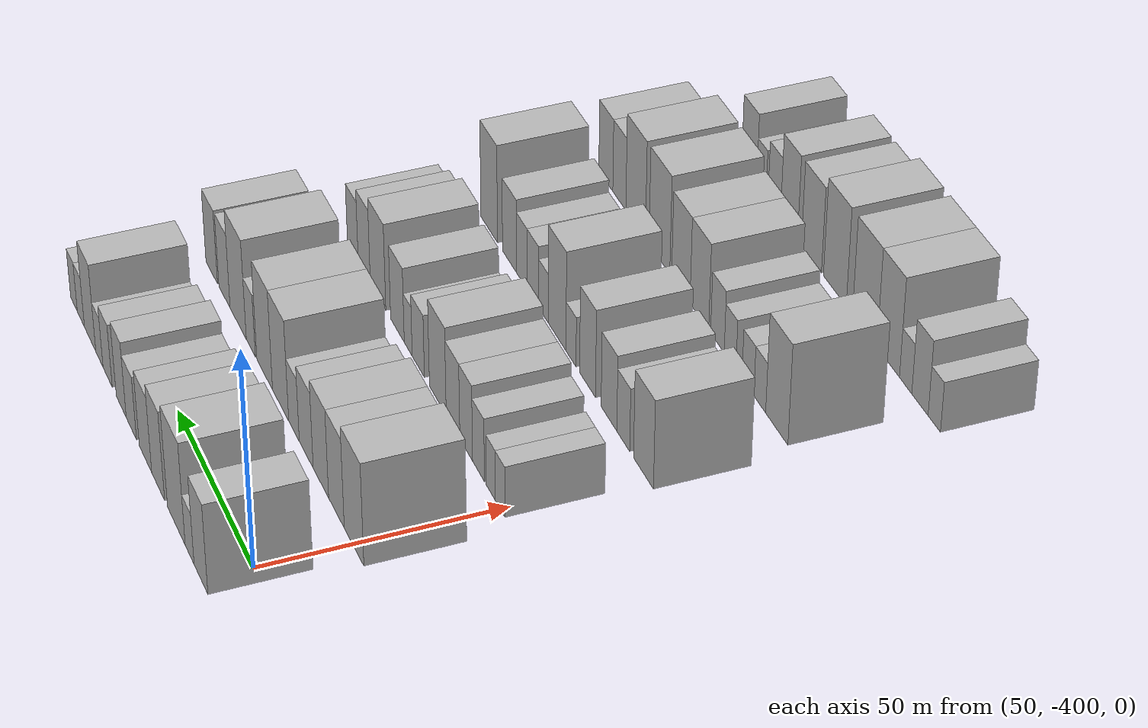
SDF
<sdf version="1.6">
 <world name="default">
  <model name="building_12">
   <static>1</static>
   <pose>50.0000 -399.7153 0 0.000000 0.000000 0.000000</pose>
   <link name="link">
    <pose>0 0 10.50 0 0 0</pose>
    <collision name="collision"><geometry><box><size>20.0000 8.9202 21.0000</size></box></geometry></collision>
    <visual name="visual">
     <cast_shadows>0</cast_shadows>
     <geometry><box><size>20.0000 8.9202 21.0000</size></box></geometry>
     <material>
      <script>
       <uri>model://HANNAS_wall/materials/scripts</uri>
       <uri>model://HANNAS_wall/materials/textures</uri>
       <name>vrc/HANNAS_wall</name>
      </script>
     </material>
    </visual>
   </link>
  </model>
  <model name="building_13">
   <static>1</static>
   <pose>50.0000 -392.3392 0 0.000000 0.000000 0.000000</pose>
   <link name="link">
    <pose>0 0 6.00 0 0 0</pose>
    <collision name="collision"><geometry><box><size>20.0000 5.8320 12.0000</size></box></geometry></collision>
    <visual name="visual">
     <cast_shadows>0</cast_shadows>
     <geometry><box><size>20.0000 5.8320 12.0000</size></box></geometry>
     <material>
      <script>
       <uri>model://HANNAS_wall/materials/scripts</uri>
       <uri>model://HANNAS_wall/materials/textures</uri>
       <name>vrc/HANNAS_wall</name>
      </script>
     </material>
    </visual>
   </link>
  </model>
  <model name="building_14">
   <static>1</static>
   <pose>50.0000 -383.4952 0 0.000000 0.000000 0.000000</pose>
   <link name="link">
    <pose>0 0 12.00 0 0 0</pose>
    <collision name="collision"><geometry><box><size>20.0000 11.8561 24.0000</size></box></geometry></collision>
    <visual name="visual">
     <cast_shadows>0</cast_shadows>
     <geometry><box><size>20.0000 11.8561 24.0000</size></box></geometry>
     <material>
      <script>
       <uri>model://HANNAS_wall/materials/scripts</uri>
       <uri>model://HANNAS_wall/materials/textures</uri>
       <name>vrc/HANNAS_wall</name>
      </script>
     </material>
    </visual>
   </link>
  </model>
  <model name="building_15">
   <static>1</static>
   <pose>50.0000 -371.1223 0 0.000000 0.000000 0.000000</pose>
   <link name="link">
    <pose>0 0 10.50 0 0 0</pose>
    <collision name="collision"><geometry><box><size>20.0000 8.8896 21.0000</size></box></geometry></collision>
    <visual name="visual">
     <cast_shadows>0</cast_shadows>
     <geometry><box><size>20.0000 8.8896 21.0000</size></box></geometry>
     <material>
      <script>
       <uri>model://HANNAS_wall/materials/scripts</uri>
       <uri>model://HANNAS_wall/materials/textures</uri>
       <name>vrc/HANNAS_wall</name>
      </script>
     </material>
    </visual>
   </link>
  </model>
  <model name="building_16">
   <static>1</static>
   <pose>50.0000 -362.3112 0 0.000000 0.000000 0.000000</pose>
   <link name="link">
    <pose>0 0 9.00 0 0 0</pose>
    <collision name="collision"><geometry><box><size>20.0000 8.7326 18.0000</size></box></geometry></collision>
    <visual name="visual">
     <cast_shadows>0</cast_shadows>
     <geometry><box><size>20.0000 8.7326 18.0000</size></box></geometry>
     <material>
      <script>
       <uri>model://HANNAS_wall/materials/scripts</uri>
       <uri>model://HANNAS_wall/materials/textures</uri>
       <name>vrc/HANNAS_wall</name>
      </script>
     </material>
    </visual>
   </link>
  </model>
  <model name="building_17">
   <static>1</static>
   <pose>50.0000 -352.2505 0 0.000000 0.000000 0.000000</pose>
   <link name="link">
    <pose>0 0 7.50 0 0 0</pose>
    <collision name="collision"><geometry><box><size>20.0000 7.3887 15.0000</size></box></geometry></collision>
    <visual name="visual">
     <cast_shadows>0</cast_shadows>
     <geometry><box><size>20.0000 7.3887 15.0000</size></box></geometry>
     <material>
      <script>
       <uri>model://HANNAS_wall/materials/scripts</uri>
       <uri>model://HANNAS_wall/materials/textures</uri>
       <name>vrc/HANNAS_wall</name>
      </script>
     </material>
    </visual>
   </link>
  </model>
  <model name="building_18">
   <static>1</static>
   <pose>50.0000 -344.9468 0 0.000000 0.000000 0.000000</pose>
   <link name="link">
    <pose>0 0 9.00 0 0 0</pose>
    <collision name="collision"><geometry><box><size>20.0000 7.2187 18.0000</size></box></geometry></collision>
    <visual name="visual">
     <cast_shadows>0</cast_shadows>
     <geometry><box><size>20.0000 7.2187 18.0000</size></box></geometry>
     <material>
      <script>
       <uri>model://HANNAS_wall/materials/scripts</uri>
       <uri>model://HANNAS_wall/materials/textures</uri>
       <name>vrc/HANNAS_wall</name>
      </script>
     </material>
    </visual>
   </link>
  </model>
  <model name="building_19">
   <static>1</static>
   <pose>50.0000 -334.9244 0 0.000000 0.000000 0.000000</pose>
   <link name="link">
    <pose>0 0 7.50 0 0 0</pose>
    <collision name="collision"><geometry><box><size>20.0000 6.8262 15.0000</size></box></geometry></collision>
    <visual name="visual">
     <cast_shadows>0</cast_shadows>
     <geometry><box><size>20.0000 6.8262 15.0000</size></box></geometry>
     <material>
      <script>
       <uri>model://HANNAS_wall/materials/scripts</uri>
       <uri>model://HANNAS_wall/materials/textures</uri>
       <name>vrc/HANNAS_wall</name>
      </script>
     </material>
    </visual>
   </link>
  </model>
  <model name="building_20">
   <static>1</static>
   <pose>50.0000 -328.7829 0 0.000000 0.000000 0.000000</pose>
   <link name="link">
    <pose>0 0 6.00 0 0 0</pose>
    <collision name="collision"><geometry><box><size>20.0000 5.4569 12.0000</size></box></geometry></collision>
    <visual name="visual">
     <cast_shadows>0</cast_shadows>
     <geometry><box><size>20.0000 5.4569 12.0000</size></box></geometry>
     <material>
      <script>
       <uri>model://HANNAS_wall/materials/scripts</uri>
       <uri>model://HANNAS_wall/materials/textures</uri>
       <name>vrc/HANNAS_wall</name>
      </script>
     </material>
    </visual>
   </link>
  </model>
  <model name="building_21">
   <static>1</static>
   <pose>50.0000 -321.6892 0 0.000000 0.000000 0.000000</pose>
   <link name="link">
    <pose>0 0 10.50 0 0 0</pose>
    <collision name="collision"><geometry><box><size>20.0000 8.7305 21.0000</size></box></geometry></collision>
    <visual name="visual">
     <cast_shadows>0</cast_shadows>
     <geometry><box><size>20.0000 8.7305 21.0000</size></box></geometry>
     <material>
      <script>
       <uri>model://HANNAS_wall/materials/scripts</uri>
       <uri>model://HANNAS_wall/materials/textures</uri>
       <name>vrc/HANNAS_wall</name>
      </script>
     </material>
    </visual>
   </link>
  </model>
  <model name="building_22">
   <static>1</static>
   <pose>50.0000 -314.5585 0 0.000000 0.000000 0.000000</pose>
   <link name="link">
    <pose>0 0 6.00 0 0 0</pose>
    <collision name="collision"><geometry><box><size>20.0000 5.5309 12.0000</size></box></geometry></collision>
    <visual name="visual">
     <cast_shadows>0</cast_shadows>
     <geometry><box><size>20.0000 5.5309 12.0000</size></box></geometry>
     <material>
      <script>
       <uri>model://HANNAS_wall/materials/scripts</uri>
       <uri>model://HANNAS_wall/materials/textures</uri>
       <name>vrc/HANNAS_wall</name>
      </script>
     </material>
    </visual>
   </link>
  </model>
  <model name="building_23">
   <static>1</static>
   <pose>50.0000 -309.1795 0 0.000000 0.000000 0.000000</pose>
   <link name="link">
    <pose>0 0 6.00 0 0 0</pose>
    <collision name="collision"><geometry><box><size>20.0000 5.2270 12.0000</size></box></geometry></collision>
    <visual name="visual">
     <cast_shadows>0</cast_shadows>
     <geometry><box><size>20.0000 5.2270 12.0000</size></box></geometry>
     <material>
      <script>
       <uri>model://HANNAS_wall/materials/scripts</uri>
       <uri>model://HANNAS_wall/materials/textures</uri>
       <name>vrc/HANNAS_wall</name>
      </script>
     </material>
    </visual>
   </link>
  </model>
  <model name="building_116">
   <static>1</static>
   <pose>79.0000 -400.7928 0 0.000000 0.000000 0.000000</pose>
   <link name="link">
    <pose>0 0 12.00 0 0 0</pose>
    <collision name="collision"><geometry><box><size>20.0000 11.5504 24.0000</size></box></geometry></collision>
    <visual name="visual">
     <cast_shadows>0</cast_shadows>
     <geometry><box><size>20.0000 11.5504 24.0000</size></box></geometry>
     <material>
      <script>
       <uri>model://HANNAS_wall/materials/scripts</uri>
       <uri>model://HANNAS_wall/materials/textures</uri>
       <name>vrc/HANNAS_wall</name>
      </script>
     </material>
    </visual>
   </link>
  </model>
  <model name="building_117">
   <static>1</static>
   <pose>79.0000 -390.3187 0 0.000000 0.000000 0.000000</pose>
   <link name="link">
    <pose>0 0 10.50 0 0 0</pose>
    <collision name="collision"><geometry><box><size>20.0000 9.3979 21.0000</size></box></geometry></collision>
    <visual name="visual">
     <cast_shadows>0</cast_shadows>
     <geometry><box><size>20.0000 9.3979 21.0000</size></box></geometry>
     <material>
      <script>
       <uri>model://HANNAS_wall/materials/scripts</uri>
       <uri>model://HANNAS_wall/materials/textures</uri>
       <name>vrc/HANNAS_wall</name>
      </script>
     </material>
    </visual>
   </link>
  </model>
  <model name="building_118">
   <static>1</static>
   <pose>79.0000 -380.8746 0 0.000000 0.000000 0.000000</pose>
   <link name="link">
    <pose>0 0 10.50 0 0 0</pose>
    <collision name="collision"><geometry><box><size>20.0000 9.4901 21.0000</size></box></geometry></collision>
    <visual name="visual">
     <cast_shadows>0</cast_shadows>
     <geometry><box><size>20.0000 9.4901 21.0000</size></box></geometry>
     <material>
      <script>
       <uri>model://HANNAS_wall/materials/scripts</uri>
       <uri>model://HANNAS_wall/materials/textures</uri>
       <name>vrc/HANNAS_wall</name>
      </script>
     </material>
    </visual>
   </link>
  </model>
  <model name="building_119">
   <static>1</static>
   <pose>79.0000 -371.7578 0 0.000000 0.000000 0.000000</pose>
   <link name="link">
    <pose>0 0 9.00 0 0 0</pose>
    <collision name="collision"><geometry><box><size>20.0000 8.7435 18.0000</size></box></geometry></collision>
    <visual name="visual">
     <cast_shadows>0</cast_shadows>
     <geometry><box><size>20.0000 8.7435 18.0000</size></box></geometry>
     <material>
      <script>
       <uri>model://HANNAS_wall/materials/scripts</uri>
       <uri>model://HANNAS_wall/materials/textures</uri>
       <name>vrc/HANNAS_wall</name>
      </script>
     </material>
    </visual>
   </link>
  </model>
  <model name="building_120">
   <static>1</static>
   <pose>79.0000 -364.0151 0 0.000000 0.000000 0.000000</pose>
   <link name="link">
    <pose>0 0 7.50 0 0 0</pose>
    <collision name="collision"><geometry><box><size>20.0000 6.7421 15.0000</size></box></geometry></collision>
    <visual name="visual">
     <cast_shadows>0</cast_shadows>
     <geometry><box><size>20.0000 6.7421 15.0000</size></box></geometry>
     <material>
      <script>
       <uri>model://HANNAS_wall/materials/scripts</uri>
       <uri>model://HANNAS_wall/materials/textures</uri>
       <name>vrc/HANNAS_wall</name>
      </script>
     </material>
    </visual>
   </link>
  </model>
  <model name="building_121">
   <static>1</static>
   <pose>79.0000 -355.3989 0 0.000000 0.000000 0.000000</pose>
   <link name="link">
    <pose>0 0 12.00 0 0 0</pose>
    <collision name="collision"><geometry><box><size>20.0000 10.4903 24.0000</size></box></geometry></collision>
    <visual name="visual">
     <cast_shadows>0</cast_shadows>
     <geometry><box><size>20.0000 10.4903 24.0000</size></box></geometry>
     <material>
      <script>
       <uri>model://HANNAS_wall/materials/scripts</uri>
       <uri>model://HANNAS_wall/materials/textures</uri>
       <name>vrc/HANNAS_wall</name>
      </script>
     </material>
    </visual>
   </link>
  </model>
  <model name="building_122">
   <static>1</static>
   <pose>79.0000 -344.9526 0 0.000000 0.000000 0.000000</pose>
   <link name="link">
    <pose>0 0 12.00 0 0 0</pose>
    <collision name="collision"><geometry><box><size>20.0000 10.4023 24.0000</size></box></geometry></collision>
    <visual name="visual">
     <cast_shadows>0</cast_shadows>
     <geometry><box><size>20.0000 10.4023 24.0000</size></box></geometry>
     <material>
      <script>
       <uri>model://HANNAS_wall/materials/scripts</uri>
       <uri>model://HANNAS_wall/materials/textures</uri>
       <name>vrc/HANNAS_wall</name>
      </script>
     </material>
    </visual>
   </link>
  </model>
  <model name="building_123">
   <static>1</static>
   <pose>79.0000 -335.6734 0 0.000000 0.000000 0.000000</pose>
   <link name="link">
    <pose>0 0 7.50 0 0 0</pose>
    <collision name="collision"><geometry><box><size>20.0000 6.1561 15.0000</size></box></geometry></collision>
    <visual name="visual">
     <cast_shadows>0</cast_shadows>
     <geometry><box><size>20.0000 6.1561 15.0000</size></box></geometry>
     <material>
      <script>
       <uri>model://HANNAS_wall/materials/scripts</uri>
       <uri>model://HANNAS_wall/materials/textures</uri>
       <name>vrc/HANNAS_wall</name>
      </script>
     </material>
    </visual>
   </link>
  </model>
  <model name="building_124">
   <static>1</static>
   <pose>79.0000 -327.0074 0 0.000000 0.000000 0.000000</pose>
   <link name="link">
    <pose>0 0 12.00 0 0 0</pose>
    <collision name="collision"><geometry><box><size>20.0000 11.1759 24.0000</size></box></geometry></collision>
    <visual name="visual">
     <cast_shadows>0</cast_shadows>
     <geometry><box><size>20.0000 11.1759 24.0000</size></box></geometry>
     <material>
      <script>
       <uri>model://HANNAS_wall/materials/scripts</uri>
       <uri>model://HANNAS_wall/materials/textures</uri>
       <name>vrc/HANNAS_wall</name>
      </script>
     </material>
    </visual>
   </link>
  </model>
  <model name="building_125">
   <static>1</static>
   <pose>79.0000 -317.5021 0 0.000000 0.000000 0.000000</pose>
   <link name="link">
    <pose>0 0 9.00 0 0 0</pose>
    <collision name="collision"><geometry><box><size>20.0000 7.8346 18.0000</size></box></geometry></collision>
    <visual name="visual">
     <cast_shadows>0</cast_shadows>
     <geometry><box><size>20.0000 7.8346 18.0000</size></box></geometry>
     <material>
      <script>
       <uri>model://HANNAS_wall/materials/scripts</uri>
       <uri>model://HANNAS_wall/materials/textures</uri>
       <name>vrc/HANNAS_wall</name>
      </script>
     </material>
    </visual>
   </link>
  </model>
  <model name="building_126">
   <static>1</static>
   <pose>79.0000 -308.4600 0 0.000000 0.000000 0.000000</pose>
   <link name="link">
    <pose>0 0 9.00 0 0 0</pose>
    <collision name="collision"><geometry><box><size>20.0000 8.2496 18.0000</size></box></geometry></collision>
    <visual name="visual">
     <cast_shadows>0</cast_shadows>
     <geometry><box><size>20.0000 8.2496 18.0000</size></box></geometry>
     <material>
      <script>
       <uri>model://HANNAS_wall/materials/scripts</uri>
       <uri>model://HANNAS_wall/materials/textures</uri>
       <name>vrc/HANNAS_wall</name>
      </script>
     </material>
    </visual>
   </link>
  </model>
  <model name="building_234">
   <static>1</static>
   <pose>108.0000 -399.9442 0 0.000000 0.000000 0.000000</pose>
   <link name="link">
    <pose>0 0 6.00 0 0 0</pose>
    <collision name="collision"><geometry><box><size>20.0000 5.2322 12.0000</size></box></geometry></collision>
    <visual name="visual">
     <cast_shadows>0</cast_shadows>
     <geometry><box><size>20.0000 5.2322 12.0000</size></box></geometry>
     <material>
      <script>
       <uri>model://HANNAS_wall/materials/scripts</uri>
       <uri>model://HANNAS_wall/materials/textures</uri>
       <name>vrc/HANNAS_wall</name>
      </script>
     </material>
    </visual>
   </link>
  </model>
  <model name="building_235">
   <static>1</static>
   <pose>108.0000 -394.8222 0 0.000000 0.000000 0.000000</pose>
   <link name="link">
    <pose>0 0 6.00 0 0 0</pose>
    <collision name="collision"><geometry><box><size>20.0000 5.0118 12.0000</size></box></geometry></collision>
    <visual name="visual">
     <cast_shadows>0</cast_shadows>
     <geometry><box><size>20.0000 5.0118 12.0000</size></box></geometry>
     <material>
      <script>
       <uri>model://HANNAS_wall/materials/scripts</uri>
       <uri>model://HANNAS_wall/materials/textures</uri>
       <name>vrc/HANNAS_wall</name>
      </script>
     </material>
    </visual>
   </link>
  </model>
  <model name="building_236">
   <static>1</static>
   <pose>108.0000 -388.0002 0 0.000000 0.000000 0.000000</pose>
   <link name="link">
    <pose>0 0 7.50 0 0 0</pose>
    <collision name="collision"><geometry><box><size>20.0000 6.6321 15.0000</size></box></geometry></collision>
    <visual name="visual">
     <cast_shadows>0</cast_shadows>
     <geometry><box><size>20.0000 6.6321 15.0000</size></box></geometry>
     <material>
      <script>
       <uri>model://HANNAS_wall/materials/scripts</uri>
       <uri>model://HANNAS_wall/materials/textures</uri>
       <name>vrc/HANNAS_wall</name>
      </script>
     </material>
    </visual>
   </link>
  </model>
  <model name="building_237">
   <static>1</static>
   <pose>108.0000 -381.0759 0 0.000000 0.000000 0.000000</pose>
   <link name="link">
    <pose>0 0 9.00 0 0 0</pose>
    <collision name="collision"><geometry><box><size>20.0000 7.2165 18.0000</size></box></geometry></collision>
    <visual name="visual">
     <cast_shadows>0</cast_shadows>
     <geometry><box><size>20.0000 7.2165 18.0000</size></box></geometry>
     <material>
      <script>
       <uri>model://HANNAS_wall/materials/scripts</uri>
       <uri>model://HANNAS_wall/materials/textures</uri>
       <name>vrc/HANNAS_wall</name>
      </script>
     </material>
    </visual>
   </link>
  </model>
  <model name="building_238">
   <static>1</static>
   <pose>108.0000 -373.5314 0 0.000000 0.000000 0.000000</pose>
   <link name="link">
    <pose>0 0 9.00 0 0 0</pose>
    <collision name="collision"><geometry><box><size>20.0000 7.8724 18.0000</size></box></geometry></collision>
    <visual name="visual">
     <cast_shadows>0</cast_shadows>
     <geometry><box><size>20.0000 7.8724 18.0000</size></box></geometry>
     <material>
      <script>
       <uri>model://HANNAS_wall/materials/scripts</uri>
       <uri>model://HANNAS_wall/materials/textures</uri>
       <name>vrc/HANNAS_wall</name>
      </script>
     </material>
    </visual>
   </link>
  </model>
  <model name="building_239">
   <static>1</static>
   <pose>108.0000 -364.6773 0 0.000000 0.000000 0.000000</pose>
   <link name="link">
    <pose>0 0 10.50 0 0 0</pose>
    <collision name="collision"><geometry><box><size>20.0000 9.8359 21.0000</size></box></geometry></collision>
    <visual name="visual">
     <cast_shadows>0</cast_shadows>
     <geometry><box><size>20.0000 9.8359 21.0000</size></box></geometry>
     <material>
      <script>
       <uri>model://HANNAS_wall/materials/scripts</uri>
       <uri>model://HANNAS_wall/materials/textures</uri>
       <name>vrc/HANNAS_wall</name>
      </script>
     </material>
    </visual>
   </link>
  </model>
  <model name="building_240">
   <static>1</static>
   <pose>108.0000 -353.0786 0 0.000000 0.000000 0.000000</pose>
   <link name="link">
    <pose>0 0 7.50 0 0 0</pose>
    <collision name="collision"><geometry><box><size>20.0000 7.3615 15.0000</size></box></geometry></collision>
    <visual name="visual">
     <cast_shadows>0</cast_shadows>
     <geometry><box><size>20.0000 7.3615 15.0000</size></box></geometry>
     <material>
      <script>
       <uri>model://HANNAS_wall/materials/scripts</uri>
       <uri>model://HANNAS_wall/materials/textures</uri>
       <name>vrc/HANNAS_wall</name>
      </script>
     </material>
    </visual>
   </link>
  </model>
  <model name="building_241">
   <static>1</static>
   <pose>108.0000 -346.9817 0 0.000000 0.000000 0.000000</pose>
   <link name="link">
    <pose>0 0 6.00 0 0 0</pose>
    <collision name="collision"><geometry><box><size>20.0000 4.8322 12.0000</size></box></geometry></collision>
    <visual name="visual">
     <cast_shadows>0</cast_shadows>
     <geometry><box><size>20.0000 4.8322 12.0000</size></box></geometry>
     <material>
      <script>
       <uri>model://HANNAS_wall/materials/scripts</uri>
       <uri>model://HANNAS_wall/materials/textures</uri>
       <name>vrc/HANNAS_wall</name>
      </script>
     </material>
    </visual>
   </link>
  </model>
  <model name="building_242">
   <static>1</static>
   <pose>108.0000 -340.3523 0 0.000000 0.000000 0.000000</pose>
   <link name="link">
    <pose>0 0 9.00 0 0 0</pose>
    <collision name="collision"><geometry><box><size>20.0000 8.4266 18.0000</size></box></geometry></collision>
    <visual name="visual">
     <cast_shadows>0</cast_shadows>
     <geometry><box><size>20.0000 8.4266 18.0000</size></box></geometry>
     <material>
      <script>
       <uri>model://HANNAS_wall/materials/scripts</uri>
       <uri>model://HANNAS_wall/materials/textures</uri>
       <name>vrc/HANNAS_wall</name>
      </script>
     </material>
    </visual>
   </link>
  </model>
  <model name="building_243">
   <static>1</static>
   <pose>108.0000 -328.2255 0 0.000000 0.000000 0.000000</pose>
   <link name="link">
    <pose>0 0 10.50 0 0 0</pose>
    <collision name="collision"><geometry><box><size>20.0000 9.8271 21.0000</size></box></geometry></collision>
    <visual name="visual">
     <cast_shadows>0</cast_shadows>
     <geometry><box><size>20.0000 9.8271 21.0000</size></box></geometry>
     <material>
      <script>
       <uri>model://HANNAS_wall/materials/scripts</uri>
       <uri>model://HANNAS_wall/materials/textures</uri>
       <name>vrc/HANNAS_wall</name>
      </script>
     </material>
    </visual>
   </link>
  </model>
  <model name="building_244">
   <static>1</static>
   <pose>108.0000 -319.4230 0 0.000000 0.000000 0.000000</pose>
   <link name="link">
    <pose>0 0 9.00 0 0 0</pose>
    <collision name="collision"><geometry><box><size>20.0000 7.7781 18.0000</size></box></geometry></collision>
    <visual name="visual">
     <cast_shadows>0</cast_shadows>
     <geometry><box><size>20.0000 7.7781 18.0000</size></box></geometry>
     <material>
      <script>
       <uri>model://HANNAS_wall/materials/scripts</uri>
       <uri>model://HANNAS_wall/materials/textures</uri>
       <name>vrc/HANNAS_wall</name>
      </script>
     </material>
    </visual>
   </link>
  </model>
  <model name="building_245">
   <static>1</static>
   <pose>108.0000 -312.0372 0 0.000000 0.000000 0.000000</pose>
   <link name="link">
    <pose>0 0 7.50 0 0 0</pose>
    <collision name="collision"><geometry><box><size>20.0000 6.9934 15.0000</size></box></geometry></collision>
    <visual name="visual">
     <cast_shadows>0</cast_shadows>
     <geometry><box><size>20.0000 6.9934 15.0000</size></box></geometry>
     <material>
      <script>
       <uri>model://HANNAS_wall/materials/scripts</uri>
       <uri>model://HANNAS_wall/materials/textures</uri>
       <name>vrc/HANNAS_wall</name>
      </script>
     </material>
    </visual>
   </link>
  </model>
  <model name="building_356">
   <static>1</static>
   <pose>137.0000 -399.5052 0 0.000000 0.000000 0.000000</pose>
   <link name="link">
    <pose>0 0 10.50 0 0 0</pose>
    <collision name="collision"><geometry><box><size>20.0000 10.1064 21.0000</size></box></geometry></collision>
    <visual name="visual">
     <cast_shadows>0</cast_shadows>
     <geometry><box><size>20.0000 10.1064 21.0000</size></box></geometry>
     <material>
      <script>
       <uri>model://HANNAS_wall/materials/scripts</uri>
       <uri>model://HANNAS_wall/materials/textures</uri>
       <name>vrc/HANNAS_wall</name>
      </script>
     </material>
    </visual>
   </link>
  </model>
  <model name="building_357">
   <static>1</static>
   <pose>137.0000 -389.1155 0 0.000000 0.000000 0.000000</pose>
   <link name="link">
    <pose>0 0 7.50 0 0 0</pose>
    <collision name="collision"><geometry><box><size>20.0000 6.6729 15.0000</size></box></geometry></collision>
    <visual name="visual">
     <cast_shadows>0</cast_shadows>
     <geometry><box><size>20.0000 6.6729 15.0000</size></box></geometry>
     <material>
      <script>
       <uri>model://HANNAS_wall/materials/scripts</uri>
       <uri>model://HANNAS_wall/materials/textures</uri>
       <name>vrc/HANNAS_wall</name>
      </script>
     </material>
    </visual>
   </link>
  </model>
  <model name="building_358">
   <static>1</static>
   <pose>137.0000 -381.6542 0 0.000000 0.000000 0.000000</pose>
   <link name="link">
    <pose>0 0 9.00 0 0 0</pose>
    <collision name="collision"><geometry><box><size>20.0000 8.2495 18.0000</size></box></geometry></collision>
    <visual name="visual">
     <cast_shadows>0</cast_shadows>
     <geometry><box><size>20.0000 8.2495 18.0000</size></box></geometry>
     <material>
      <script>
       <uri>model://HANNAS_wall/materials/scripts</uri>
       <uri>model://HANNAS_wall/materials/textures</uri>
       <name>vrc/HANNAS_wall</name>
      </script>
     </material>
    </visual>
   </link>
  </model>
  <model name="building_359">
   <static>1</static>
   <pose>137.0000 -370.2558 0 0.000000 0.000000 0.000000</pose>
   <link name="link">
    <pose>0 0 10.50 0 0 0</pose>
    <collision name="collision"><geometry><box><size>20.0000 8.5473 21.0000</size></box></geometry></collision>
    <visual name="visual">
     <cast_shadows>0</cast_shadows>
     <geometry><box><size>20.0000 8.5473 21.0000</size></box></geometry>
     <material>
      <script>
       <uri>model://HANNAS_wall/materials/scripts</uri>
       <uri>model://HANNAS_wall/materials/textures</uri>
       <name>vrc/HANNAS_wall</name>
      </script>
     </material>
    </visual>
   </link>
  </model>
  <model name="building_360">
   <static>1</static>
   <pose>137.0000 -361.2327 0 0.000000 0.000000 0.000000</pose>
   <link name="link">
    <pose>0 0 6.00 0 0 0</pose>
    <collision name="collision"><geometry><box><size>20.0000 5.4989 12.0000</size></box></geometry></collision>
    <visual name="visual">
     <cast_shadows>0</cast_shadows>
     <geometry><box><size>20.0000 5.4989 12.0000</size></box></geometry>
     <material>
      <script>
       <uri>model://HANNAS_wall/materials/scripts</uri>
       <uri>model://HANNAS_wall/materials/textures</uri>
       <name>vrc/HANNAS_wall</name>
      </script>
     </material>
    </visual>
   </link>
  </model>
  <model name="building_361">
   <static>1</static>
   <pose>137.0000 -353.5483 0 0.000000 0.000000 0.000000</pose>
   <link name="link">
    <pose>0 0 12.00 0 0 0</pose>
    <collision name="collision"><geometry><box><size>20.0000 9.8699 24.0000</size></box></geometry></collision>
    <visual name="visual">
     <cast_shadows>0</cast_shadows>
     <geometry><box><size>20.0000 9.8699 24.0000</size></box></geometry>
     <material>
      <script>
       <uri>model://HANNAS_wall/materials/scripts</uri>
       <uri>model://HANNAS_wall/materials/textures</uri>
       <name>vrc/HANNAS_wall</name>
      </script>
     </material>
    </visual>
   </link>
  </model>
  <model name="building_362">
   <static>1</static>
   <pose>137.0000 -345.8453 0 0.000000 0.000000 0.000000</pose>
   <link name="link">
    <pose>0 0 6.00 0 0 0</pose>
    <collision name="collision"><geometry><box><size>20.0000 5.5359 12.0000</size></box></geometry></collision>
    <visual name="visual">
     <cast_shadows>0</cast_shadows>
     <geometry><box><size>20.0000 5.5359 12.0000</size></box></geometry>
     <material>
      <script>
       <uri>model://HANNAS_wall/materials/scripts</uri>
       <uri>model://HANNAS_wall/materials/textures</uri>
       <name>vrc/HANNAS_wall</name>
      </script>
     </material>
    </visual>
   </link>
  </model>
  <model name="building_363">
   <static>1</static>
   <pose>137.0000 -339.7458 0 0.000000 0.000000 0.000000</pose>
   <link name="link">
    <pose>0 0 7.50 0 0 0</pose>
    <collision name="collision"><geometry><box><size>20.0000 6.6632 15.0000</size></box></geometry></collision>
    <visual name="visual">
     <cast_shadows>0</cast_shadows>
     <geometry><box><size>20.0000 6.6632 15.0000</size></box></geometry>
     <material>
      <script>
       <uri>model://HANNAS_wall/materials/scripts</uri>
       <uri>model://HANNAS_wall/materials/textures</uri>
       <name>vrc/HANNAS_wall</name>
      </script>
     </material>
    </visual>
   </link>
  </model>
  <model name="building_364">
   <static>1</static>
   <pose>137.0000 -333.3395 0 0.000000 0.000000 0.000000</pose>
   <link name="link">
    <pose>0 0 7.50 0 0 0</pose>
    <collision name="collision"><geometry><box><size>20.0000 6.1494 15.0000</size></box></geometry></collision>
    <visual name="visual">
     <cast_shadows>0</cast_shadows>
     <geometry><box><size>20.0000 6.1494 15.0000</size></box></geometry>
     <material>
      <script>
       <uri>model://HANNAS_wall/materials/scripts</uri>
       <uri>model://HANNAS_wall/materials/textures</uri>
       <name>vrc/HANNAS_wall</name>
      </script>
     </material>
    </visual>
   </link>
  </model>
  <model name="building_365">
   <static>1</static>
   <pose>137.0000 -326.1203 0 0.000000 0.000000 0.000000</pose>
   <link name="link">
    <pose>0 0 9.00 0 0 0</pose>
    <collision name="collision"><geometry><box><size>20.0000 8.2890 18.0000</size></box></geometry></collision>
    <visual name="visual">
     <cast_shadows>0</cast_shadows>
     <geometry><box><size>20.0000 8.2890 18.0000</size></box></geometry>
     <material>
      <script>
       <uri>model://HANNAS_wall/materials/scripts</uri>
       <uri>model://HANNAS_wall/materials/textures</uri>
       <name>vrc/HANNAS_wall</name>
      </script>
     </material>
    </visual>
   </link>
  </model>
  <model name="building_366">
   <static>1</static>
   <pose>137.0000 -313.9480 0 0.000000 0.000000 0.000000</pose>
   <link name="link">
    <pose>0 0 12.00 0 0 0</pose>
    <collision name="collision"><geometry><box><size>20.0000 10.0556 24.0000</size></box></geometry></collision>
    <visual name="visual">
     <cast_shadows>0</cast_shadows>
     <geometry><box><size>20.0000 10.0556 24.0000</size></box></geometry>
     <material>
      <script>
       <uri>model://HANNAS_wall/materials/scripts</uri>
       <uri>model://HANNAS_wall/materials/textures</uri>
       <name>vrc/HANNAS_wall</name>
      </script>
     </material>
    </visual>
   </link>
  </model>
  <model name="building_474">
   <static>1</static>
   <pose>166.0000 -395.9549 0 0.000000 0.000000 0.000000</pose>
   <link name="link">
    <pose>0 0 12.00 0 0 0</pose>
    <collision name="collision"><geometry><box><size>20.0000 10.6908 24.0000</size></box></geometry></collision>
    <visual name="visual">
     <cast_shadows>0</cast_shadows>
     <geometry><box><size>20.0000 10.6908 24.0000</size></box></geometry>
     <material>
      <script>
       <uri>model://HANNAS_wall/materials/scripts</uri>
       <uri>model://HANNAS_wall/materials/textures</uri>
       <name>vrc/HANNAS_wall</name>
      </script>
     </material>
    </visual>
   </link>
  </model>
  <model name="building_475">
   <static>1</static>
   <pose>166.0000 -387.7183 0 0.000000 0.000000 0.000000</pose>
   <link name="link">
    <pose>0 0 6.00 0 0 0</pose>
    <collision name="collision"><geometry><box><size>20.0000 5.7824 12.0000</size></box></geometry></collision>
    <visual name="visual">
     <cast_shadows>0</cast_shadows>
     <geometry><box><size>20.0000 5.7824 12.0000</size></box></geometry>
     <material>
      <script>
       <uri>model://HANNAS_wall/materials/scripts</uri>
       <uri>model://HANNAS_wall/materials/textures</uri>
       <name>vrc/HANNAS_wall</name>
      </script>
     </material>
    </visual>
   </link>
  </model>
  <model name="building_476">
   <static>1</static>
   <pose>166.0000 -381.8885 0 0.000000 0.000000 0.000000</pose>
   <link name="link">
    <pose>0 0 6.00 0 0 0</pose>
    <collision name="collision"><geometry><box><size>20.0000 5.8773 12.0000</size></box></geometry></collision>
    <visual name="visual">
     <cast_shadows>0</cast_shadows>
     <geometry><box><size>20.0000 5.8773 12.0000</size></box></geometry>
     <material>
      <script>
       <uri>model://HANNAS_wall/materials/scripts</uri>
       <uri>model://HANNAS_wall/materials/textures</uri>
       <name>vrc/HANNAS_wall</name>
      </script>
     </material>
    </visual>
   </link>
  </model>
  <model name="building_477">
   <static>1</static>
   <pose>166.0000 -372.9915 0 0.000000 0.000000 0.000000</pose>
   <link name="link">
    <pose>0 0 6.00 0 0 0</pose>
    <collision name="collision"><geometry><box><size>20.0000 5.9167 12.0000</size></box></geometry></collision>
    <visual name="visual">
     <cast_shadows>0</cast_shadows>
     <geometry><box><size>20.0000 5.9167 12.0000</size></box></geometry>
     <material>
      <script>
       <uri>model://HANNAS_wall/materials/scripts</uri>
       <uri>model://HANNAS_wall/materials/textures</uri>
       <name>vrc/HANNAS_wall</name>
      </script>
     </material>
    </visual>
   </link>
  </model>
  <model name="building_478">
   <static>1</static>
   <pose>166.0000 -366.5634 0 0.000000 0.000000 0.000000</pose>
   <link name="link">
    <pose>0 0 7.50 0 0 0</pose>
    <collision name="collision"><geometry><box><size>20.0000 6.9395 15.0000</size></box></geometry></collision>
    <visual name="visual">
     <cast_shadows>0</cast_shadows>
     <geometry><box><size>20.0000 6.9395 15.0000</size></box></geometry>
     <material>
      <script>
       <uri>model://HANNAS_wall/materials/scripts</uri>
       <uri>model://HANNAS_wall/materials/textures</uri>
       <name>vrc/HANNAS_wall</name>
      </script>
     </material>
    </visual>
   </link>
  </model>
  <model name="building_479">
   <static>1</static>
   <pose>166.0000 -357.2257 0 0.000000 0.000000 0.000000</pose>
   <link name="link">
    <pose>0 0 10.50 0 0 0</pose>
    <collision name="collision"><geometry><box><size>20.0000 9.7360 21.0000</size></box></geometry></collision>
    <visual name="visual">
     <cast_shadows>0</cast_shadows>
     <geometry><box><size>20.0000 9.7360 21.0000</size></box></geometry>
     <material>
      <script>
       <uri>model://HANNAS_wall/materials/scripts</uri>
       <uri>model://HANNAS_wall/materials/textures</uri>
       <name>vrc/HANNAS_wall</name>
      </script>
     </material>
    </visual>
   </link>
  </model>
  <model name="building_480">
   <static>1</static>
   <pose>166.0000 -347.4761 0 0.000000 0.000000 0.000000</pose>
   <link name="link">
    <pose>0 0 10.50 0 0 0</pose>
    <collision name="collision"><geometry><box><size>20.0000 9.7630 21.0000</size></box></geometry></collision>
    <visual name="visual">
     <cast_shadows>0</cast_shadows>
     <geometry><box><size>20.0000 9.7630 21.0000</size></box></geometry>
     <material>
      <script>
       <uri>model://HANNAS_wall/materials/scripts</uri>
       <uri>model://HANNAS_wall/materials/textures</uri>
       <name>vrc/HANNAS_wall</name>
      </script>
     </material>
    </visual>
   </link>
  </model>
  <model name="building_481">
   <static>1</static>
   <pose>166.0000 -335.9434 0 0.000000 0.000000 0.000000</pose>
   <link name="link">
    <pose>0 0 12.00 0 0 0</pose>
    <collision name="collision"><geometry><box><size>20.0000 11.3025 24.0000</size></box></geometry></collision>
    <visual name="visual">
     <cast_shadows>0</cast_shadows>
     <geometry><box><size>20.0000 11.3025 24.0000</size></box></geometry>
     <material>
      <script>
       <uri>model://HANNAS_wall/materials/scripts</uri>
       <uri>model://HANNAS_wall/materials/textures</uri>
       <name>vrc/HANNAS_wall</name>
      </script>
     </material>
    </visual>
   </link>
  </model>
  <model name="building_482">
   <static>1</static>
   <pose>166.0000 -322.8501 0 0.000000 0.000000 0.000000</pose>
   <link name="link">
    <pose>0 0 12.00 0 0 0</pose>
    <collision name="collision"><geometry><box><size>20.0000 10.8841 24.0000</size></box></geometry></collision>
    <visual name="visual">
     <cast_shadows>0</cast_shadows>
     <geometry><box><size>20.0000 10.8841 24.0000</size></box></geometry>
     <material>
      <script>
       <uri>model://HANNAS_wall/materials/scripts</uri>
       <uri>model://HANNAS_wall/materials/textures</uri>
       <name>vrc/HANNAS_wall</name>
      </script>
     </material>
    </visual>
   </link>
  </model>
  <model name="building_483">
   <static>1</static>
   <pose>166.0000 -313.7095 0 0.000000 0.000000 0.000000</pose>
   <link name="link">
    <pose>0 0 9.00 0 0 0</pose>
    <collision name="collision"><geometry><box><size>20.0000 7.3969 18.0000</size></box></geometry></collision>
    <visual name="visual">
     <cast_shadows>0</cast_shadows>
     <geometry><box><size>20.0000 7.3969 18.0000</size></box></geometry>
     <material>
      <script>
       <uri>model://HANNAS_wall/materials/scripts</uri>
       <uri>model://HANNAS_wall/materials/textures</uri>
       <name>vrc/HANNAS_wall</name>
      </script>
     </material>
    </visual>
   </link>
  </model>
  <model name="building_484">
   <static>1</static>
   <pose>166.0000 -305.9865 0 0.000000 0.000000 0.000000</pose>
   <link name="link">
    <pose>0 0 9.00 0 0 0</pose>
    <collision name="collision"><geometry><box><size>20.0000 8.0492 18.0000</size></box></geometry></collision>
    <visual name="visual">
     <cast_shadows>0</cast_shadows>
     <geometry><box><size>20.0000 8.0492 18.0000</size></box></geometry>
     <material>
      <script>
       <uri>model://HANNAS_wall/materials/scripts</uri>
       <uri>model://HANNAS_wall/materials/textures</uri>
       <name>vrc/HANNAS_wall</name>
      </script>
     </material>
    </visual>
   </link>
  </model>
  <model name="building_589">
   <static>1</static>
   <pose>195.0000 -405.1829 0 0.000000 0.000000 0.000000</pose>
   <link name="link">
    <pose>0 0 6.00 0 0 0</pose>
    <collision name="collision"><geometry><box><size>20.0000 5.5160 12.0000</size></box></geometry></collision>
    <visual name="visual">
     <cast_shadows>0</cast_shadows>
     <geometry><box><size>20.0000 5.5160 12.0000</size></box></geometry>
     <material>
      <script>
       <uri>model://HANNAS_wall/materials/scripts</uri>
       <uri>model://HANNAS_wall/materials/textures</uri>
       <name>vrc/HANNAS_wall</name>
      </script>
     </material>
    </visual>
   </link>
  </model>
  <model name="building_590">
   <static>1</static>
   <pose>195.0000 -398.7496 0 0.000000 0.000000 0.000000</pose>
   <link name="link">
    <pose>0 0 9.00 0 0 0</pose>
    <collision name="collision"><geometry><box><size>20.0000 7.3507 18.0000</size></box></geometry></collision>
    <visual name="visual">
     <cast_shadows>0</cast_shadows>
     <geometry><box><size>20.0000 7.3507 18.0000</size></box></geometry>
     <material>
      <script>
       <uri>model://HANNAS_wall/materials/scripts</uri>
       <uri>model://HANNAS_wall/materials/textures</uri>
       <name>vrc/HANNAS_wall</name>
      </script>
     </material>
    </visual>
   </link>
  </model>
  <model name="building_591">
   <static>1</static>
   <pose>195.0000 -392.2516 0 0.000000 0.000000 0.000000</pose>
   <link name="link">
    <pose>0 0 6.00 0 0 0</pose>
    <collision name="collision"><geometry><box><size>20.0000 5.6452 12.0000</size></box></geometry></collision>
    <visual name="visual">
     <cast_shadows>0</cast_shadows>
     <geometry><box><size>20.0000 5.6452 12.0000</size></box></geometry>
     <material>
      <script>
       <uri>model://HANNAS_wall/materials/scripts</uri>
       <uri>model://HANNAS_wall/materials/textures</uri>
       <name>vrc/HANNAS_wall</name>
      </script>
     </material>
    </visual>
   </link>
  </model>
  <model name="building_592">
   <static>1</static>
   <pose>195.0000 -384.1801 0 0.000000 0.000000 0.000000</pose>
   <link name="link">
    <pose>0 0 12.00 0 0 0</pose>
    <collision name="collision"><geometry><box><size>20.0000 10.4979 24.0000</size></box></geometry></collision>
    <visual name="visual">
     <cast_shadows>0</cast_shadows>
     <geometry><box><size>20.0000 10.4979 24.0000</size></box></geometry>
     <material>
      <script>
       <uri>model://HANNAS_wall/materials/scripts</uri>
       <uri>model://HANNAS_wall/materials/textures</uri>
       <name>vrc/HANNAS_wall</name>
      </script>
     </material>
    </visual>
   </link>
  </model>
  <model name="building_593">
   <static>1</static>
   <pose>195.0000 -373.1068 0 0.000000 0.000000 0.000000</pose>
   <link name="link">
    <pose>0 0 12.00 0 0 0</pose>
    <collision name="collision"><geometry><box><size>20.0000 11.6487 24.0000</size></box></geometry></collision>
    <visual name="visual">
     <cast_shadows>0</cast_shadows>
     <geometry><box><size>20.0000 11.6487 24.0000</size></box></geometry>
     <material>
      <script>
       <uri>model://HANNAS_wall/materials/scripts</uri>
       <uri>model://HANNAS_wall/materials/textures</uri>
       <name>vrc/HANNAS_wall</name>
      </script>
     </material>
    </visual>
   </link>
  </model>
  <model name="building_594">
   <static>1</static>
   <pose>195.0000 -358.6973 0 0.000000 0.000000 0.000000</pose>
   <link name="link">
    <pose>0 0 12.00 0 0 0</pose>
    <collision name="collision"><geometry><box><size>20.0000 11.1703 24.0000</size></box></geometry></collision>
    <visual name="visual">
     <cast_shadows>0</cast_shadows>
     <geometry><box><size>20.0000 11.1703 24.0000</size></box></geometry>
     <material>
      <script>
       <uri>model://HANNAS_wall/materials/scripts</uri>
       <uri>model://HANNAS_wall/materials/textures</uri>
       <name>vrc/HANNAS_wall</name>
      </script>
     </material>
    </visual>
   </link>
  </model>
  <model name="building_595">
   <static>1</static>
   <pose>195.0000 -347.0758 0 0.000000 0.000000 0.000000</pose>
   <link name="link">
    <pose>0 0 10.50 0 0 0</pose>
    <collision name="collision"><geometry><box><size>20.0000 10.0726 21.0000</size></box></geometry></collision>
    <visual name="visual">
     <cast_shadows>0</cast_shadows>
     <geometry><box><size>20.0000 10.0726 21.0000</size></box></geometry>
     <material>
      <script>
       <uri>model://HANNAS_wall/materials/scripts</uri>
       <uri>model://HANNAS_wall/materials/textures</uri>
       <name>vrc/HANNAS_wall</name>
      </script>
     </material>
    </visual>
   </link>
  </model>
  <model name="building_596">
   <static>1</static>
   <pose>195.0000 -335.6785 0 0.000000 0.000000 0.000000</pose>
   <link name="link">
    <pose>0 0 10.50 0 0 0</pose>
    <collision name="collision"><geometry><box><size>20.0000 8.7220 21.0000</size></box></geometry></collision>
    <visual name="visual">
     <cast_shadows>0</cast_shadows>
     <geometry><box><size>20.0000 8.7220 21.0000</size></box></geometry>
     <material>
      <script>
       <uri>model://HANNAS_wall/materials/scripts</uri>
       <uri>model://HANNAS_wall/materials/textures</uri>
       <name>vrc/HANNAS_wall</name>
      </script>
     </material>
    </visual>
   </link>
  </model>
  <model name="building_597">
   <static>1</static>
   <pose>195.0000 -328.0309 0 0.000000 0.000000 0.000000</pose>
   <link name="link">
    <pose>0 0 7.50 0 0 0</pose>
    <collision name="collision"><geometry><box><size>20.0000 6.5732 15.0000</size></box></geometry></collision>
    <visual name="visual">
     <cast_shadows>0</cast_shadows>
     <geometry><box><size>20.0000 6.5732 15.0000</size></box></geometry>
     <material>
      <script>
       <uri>model://HANNAS_wall/materials/scripts</uri>
       <uri>model://HANNAS_wall/materials/textures</uri>
       <name>vrc/HANNAS_wall</name>
      </script>
     </material>
    </visual>
   </link>
  </model>
  <model name="building_598">
   <static>1</static>
   <pose>195.0000 -321.2707 0 0.000000 0.000000 0.000000</pose>
   <link name="link">
    <pose>0 0 6.00 0 0 0</pose>
    <collision name="collision"><geometry><box><size>20.0000 4.9473 12.0000</size></box></geometry></collision>
    <visual name="visual">
     <cast_shadows>0</cast_shadows>
     <geometry><box><size>20.0000 4.9473 12.0000</size></box></geometry>
     <material>
      <script>
       <uri>model://HANNAS_wall/materials/scripts</uri>
       <uri>model://HANNAS_wall/materials/textures</uri>
       <name>vrc/HANNAS_wall</name>
      </script>
     </material>
    </visual>
   </link>
  </model>
  <model name="building_599">
   <static>1</static>
   <pose>195.0000 -314.7747 0 0.000000 0.000000 0.000000</pose>
   <link name="link">
    <pose>0 0 9.00 0 0 0</pose>
    <collision name="collision"><geometry><box><size>20.0000 8.0446 18.0000</size></box></geometry></collision>
    <visual name="visual">
     <cast_shadows>0</cast_shadows>
     <geometry><box><size>20.0000 8.0446 18.0000</size></box></geometry>
     <material>
      <script>
       <uri>model://HANNAS_wall/materials/scripts</uri>
       <uri>model://HANNAS_wall/materials/textures</uri>
       <name>vrc/HANNAS_wall</name>
      </script>
     </material>
    </visual>
   </link>
  </model>
 </world>
</sdf>
